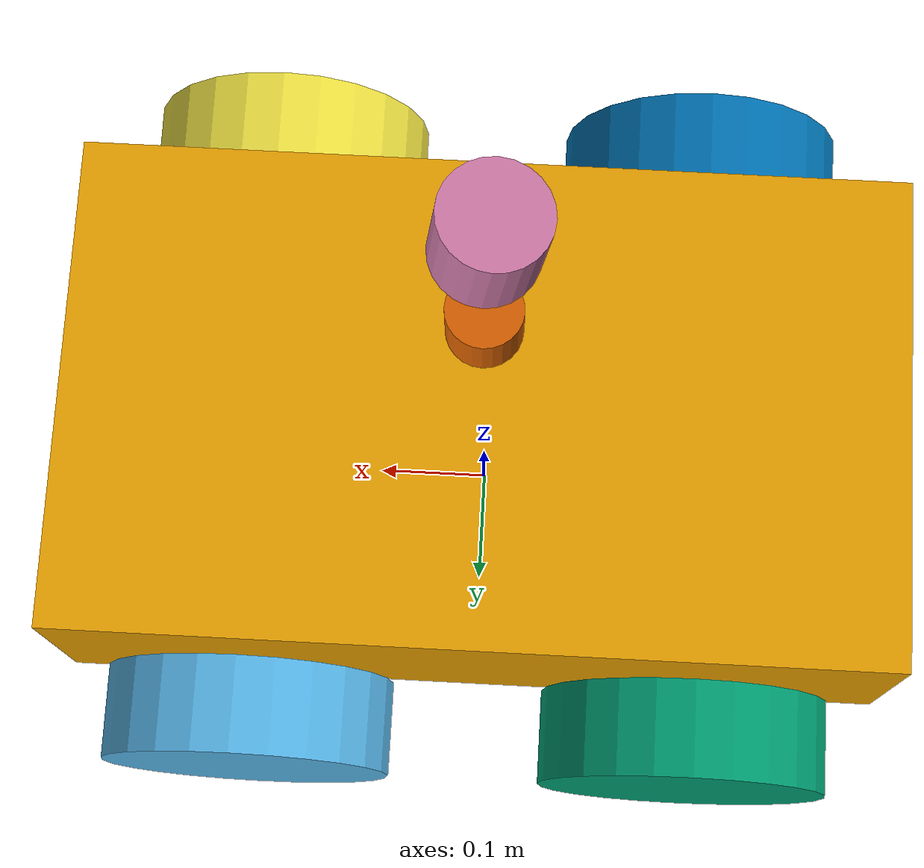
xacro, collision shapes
<?xml version="1.0"?>
	<!-- Revolute-Revolute Manipulator -->
	<robot name="autolabor_pro1" xmlns:xacro="http://www.ros.org/wiki/xacro">

	<xacro:property name="PI" value="3.1415926535897931"/>
	<xacro:property name="shaft_spacing_f" value="0.19649" />
	<xacro:property name="shaft_spacing_b" value="0.18988" />
	<xacro:property name="wheel_spacing_2" value="0.2643" />
	<xacro:property name="height" value="0.11913" />
  <xacro:include filename="$(find ouster_description)/urdf/OS1-64.urdf.xacro"/>

	<!-- Base Link -->
	<link name="base_link">
		<collision>
			<origin xyz="0 0 0.18288" rpy="0 0 0"/>
			<geometry>
				<box size="0.7248 0.4302 0.195"/>
			</geometry>
		</collision>

		<visual>
			<origin xyz="0 0 0" rpy="0 0 0"/>
			<geometry>
				<mesh filename="package://autolabor_description/meshes/pro1_body_color.dae"/>
			</geometry>
		</visual>

	</link>

	<link name="left_front_wheel">
		<collision>
			<origin xyz="0 0 0" rpy="1.5708 0 0"/>
			<geometry>
				<cylinder length="0.0822" radius="0.127"/>
			</geometry>
		</collision>

		<visual>
			<origin xyz="0 0 0" rpy="0 0 0"/>
			<geometry>
				<mesh filename="package://autolabor_description/meshes/pro1_wheel_color.dae"/>
			</geometry>
		</visual>

		<inertial>
			<origin xyz="0 0 0" rpy="0 0 0"/>
			<mass value="1.5"/>
			<inertia ixx="0.013" ixy="0.0" ixz="0.0" iyy="0.0074" iyz="0.0" izz="0.0074"/>
		</inertial>
	</link>

	<link name="left_back_wheel">
		<collision>
			<origin xyz="0 0 0" rpy="1.5708 0 0"/>
			<geometry>
				<cylinder length="0.0822" radius="0.127"/>
			</geometry>
		</collision>

		<visual>
			<origin xyz="0 0 0" rpy="0 0 0"/>
			<geometry>
				<mesh filename="package://autolabor_description/meshes/pro1_wheel_color.dae"/>
			</geometry>
		</visual>

		<inertial>
			<origin xyz="0 0 0" rpy="0 0 0"/>
			<mass value="1.5"/>
			<inertia ixx="0.013" ixy="0.0" ixz="0.0" iyy="0.0074" iyz="0.0" izz="0.0074"/>
		</inertial>
	</link>

	<link name="right_front_wheel">
		<collision>
			<origin xyz="0 0 0" rpy="1.5708 0 0"/>
			<geometry>
				<cylinder length="0.0822" radius="0.127"/>
			</geometry>
		</collision>

		<visual>
			<origin xyz="0 0 0" rpy="0 0 ${PI}"/>
			<geometry>
				<mesh filename="package://autolabor_description/meshes/pro1_wheel_color.dae"/>
			</geometry>
		</visual>

		<inertial>
			<origin xyz="0 0 0" rpy="0 0 ${PI}"/>
			<mass value="1.5"/>
			<inertia ixx="0.013" ixy="0.0" ixz="0.0" iyy="0.0074" iyz="0.0" izz="0.0074"/>
		</inertial>
	</link>

	<link name="right_back_wheel">
		<collision>
			<origin xyz="0 0 0" rpy="1.5708 0 0"/>
			<geometry>
				<cylinder length="0.0822" radius="0.127"/>
			</geometry>
		</collision>

		<visual>
			<origin xyz="0 0 0" rpy="0 0 ${PI}"/>
			<geometry>
				<mesh filename="package://autolabor_description/meshes/pro1_wheel_color.dae"/>
			</geometry>
		</visual>

		<inertial>
			<origin xyz="0 0 0" rpy="0 0 ${PI}"/>
			<mass value="1.5"/>
			<inertia ixx="0.013" ixy="0.0" ixz="0.0" iyy="0.0074" iyz="0.0" izz="0.0074"/>
		</inertial>
	</link>

	<link name="laser">
		<collision>
			<origin xyz="0 0 0" rpy="0 0 0"/>
			<geometry>
				<cylinder length="0.05" radius="0.03"/>
			</geometry>
		</collision>

		<visual>
			<origin xyz="0 0 0" rpy="0 0 0"/>
			<geometry>
				<cylinder length="0.05" radius="0.03"/>
			</geometry>
		</visual>

		<inertial>
			<origin xyz="0 0 0" rpy="0 0 0"/>
			<mass value="0.1"/>
			<inertia ixx="0.0074" ixy="0.0" ixz="0.0" iyy="0.0074" iyz="0.0" izz="0.013"/>
		</inertial>
	</link>

	<joint name="joint_left_front" type="continuous">
		<parent link="base_link"/>
		<child link="left_front_wheel"/>
		<origin xyz="${shaft_spacing_f} ${wheel_spacing_2} ${height}" rpy="0 0 0"/>
		<axis xyz="0 1 0"/>
		<dynamics damping="0.7"/>
	</joint>

	<joint name="joint_left_back" type="continuous">
		<parent link="base_link"/>
		<child link="left_back_wheel"/>
		<origin xyz="-${shaft_spacing_b} ${wheel_spacing_2} ${height}" rpy="0 0 0"/>
		<axis xyz="0 1 0"/>
		<dynamics damping="0.7"/>
	</joint>

	<joint name="joint_right_front" type="continuous">
		<parent link="base_link"/>
		<child link="right_front_wheel"/>
		<origin xyz="${shaft_spacing_f} -${wheel_spacing_2} ${height}" rpy="0 0 0"/>
		<axis xyz="0 1 0"/>
		<dynamics damping="0.7"/>
	</joint>

	<joint name="joint_right_back" type="continuous">
		<parent link="base_link"/>
		<child link="right_back_wheel"/>
		<origin xyz="-${shaft_spacing_b} -${wheel_spacing_2} ${height}" rpy="0 0 0"/>
		<axis xyz="0 1 0"/>
		<dynamics damping="0.7"/>
	</joint>

	<joint name="joint_lidar" type="fixed">
		<parent link="base_link"/>
		<child link="laser"/>
		<origin xyz="0.0 0.0 0.5" rpy="0.0 0.0 1.57"/>
	</joint>

  <xacro:OS1-64 parent="base_link" name="os_sensor"  hz="10" samples="360" min_range="0" max_range="15" imu_link="os_imu" lidar_link="os_lidar">
    <origin xyz="0 0 0.65" rpy="0.1 0 -1.57" />
  </xacro:OS1-64 >

	<!-- Gazebo plugins for simulation -->
	<gazebo>
		<!-- Differential drive controller for two-wheel drive -->
		<plugin name="diff_drive" filename="libgazebo_ros_diff_drive.so">
			<alwaysOn>true</alwaysOn>
			<updateRate>30</updateRate>
			<leftJoint>joint_left_front</leftJoint>
			<rightJoint>joint_right_front</rightJoint>
			<wheelSeparation>${wheel_spacing_2 * 2}</wheelSeparation>
			<wheelDiameter>0.254</wheelDiameter>
			<torque>10.0</torque>
			<maxLinearSpeed>1.0</maxLinearSpeed>
			<maxAngularSpeed>2.0</maxAngularSpeed>
			<publishWheelTF>true</publishWheelTF>
			<publishWheelJointState>true</publishWheelJointState>
			<robotNamespace>/r1</robotNamespace>
			<odometryTopic>odom</odometryTopic>
			<odometryFrame>odom</odometryFrame>
			<robotBaseFrame>base_link</robotBaseFrame>
			<commandTopic>cmd_vel</commandTopic>
			<publishTf>1</publishTf>
			<odometrySource>world</odometrySource>
		</plugin>
	</gazebo>

</robot>

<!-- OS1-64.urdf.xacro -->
<robot xmlns:xacro="http://www.ros.org/wiki/xacro" name="OS1-64">
  <xacro:property name="M_PI" value="3.1415926535897931" />
  <xacro:macro name="OS1-64" params="*origin parent:=CHASSIS name:=os1_sensor topic_points:=/os1_cloud_node/points topic_imu:=/os1_cloud_node/imu hz:=10 lasers:=64 samples:=512 min_range:=0.9 max_range:=75.0 noise:=0.008 min_angle:=-${M_PI} max_angle:=${M_PI} lidar_link:=os1_lidar imu_link:=os1_imu vfov_min:=-.26 vfov_max:=.26">

    <joint name="${name}_mount_joint" type="fixed">
      <xacro:insert_block name="origin" />
      <parent link="${parent}"/>
      <child link="${name}"/>
    </joint>

    <link name="${name}">
      <inertial>
         <mass value="0.01"/>
         <origin xyz="0 0 0.0365" rpy="0 0 0" />
         <inertia ixx="0.000241148" ixy="0" ixz="0"
          iyy="0.000241148" iyz="0" izz="0.000264"/>
      </inertial>
      <collision name="base_collision">
         <origin xyz="0 0 0.0365" rpy="0 0 0" />
         <geometry>
 	        <cylinder radius="0.04" length="0.073"/>
         </geometry>
      </collision>
      <visual name="base_visual">
         <origin xyz="0 0 0.0" rpy="0 0 1.5707" />
         <geometry>
	         <mesh filename="package://ouster_description/meshes/os1_64.dae" />
         </geometry>
      </visual>
    </link>

    <link name="${imu_link}" />

    <link name="${lidar_link}" />

    <joint name="${name}_imu_link_joint" type="fixed">
      <parent link="${name}" />
      <child link="${imu_link}" />
      <origin xyz="0.006253 -0.011775 0.007645" rpy="0 0 0" />
    </joint>
    <gazebo reference="${imu_link}">
    </gazebo>

    <joint name="${name}_lidar_link_joint" type="fixed">
      <parent link="${name}" />
      <child link="${lidar_link}" />
      <origin xyz="0.0 0.0 0.03618" rpy="0 0 0" />
    </joint>

    <!-- Gazebo requires the ouster_gazebo_plugins package -->
    <gazebo reference="${name}">
        <sensor type="ray" name="${name}-OS1-64">
          <pose>0 0 0 0 0 0</pose>
          <visualize>false</visualize>
          <update_rate>${hz}</update_rate>
          <ray>
            <scan>
              <horizontal>
                <samples>${samples}</samples>
                <resolution>1</resolution>
                <min_angle>${min_angle}</min_angle>
                <max_angle>${max_angle}</max_angle>
              </horizontal>
              <vertical>
                <samples>${lasers}</samples>
                <resolution>1</resolution>
                <min_angle>${vfov_min}</min_angle>
                <max_angle>${vfov_max}</max_angle>
              </vertical>
            </scan>
            <range>
              <min>${min_range}</min>
              <max>${max_range}</max>
              <resolution>0.03</resolution>
            </range>
          </ray>
          <plugin name="gazebo_ros_laser_controller" filename="libgazebo_ros_ouster_laser.so">
            <topicName>${topic_points}</topicName>
            <frameName>${lidar_link}</frameName>
            <min_range>${min_range}</min_range>
            <max_range>${max_range}</max_range>
            <gaussianNoise>${noise}</gaussianNoise>
          </plugin>
        </sensor>
    </gazebo>

    <!-- IMU -->
  <gazebo>
    <plugin name="imu_controller" filename="libhector_gazebo_ros_imu.so">
      <robotNamespace>/</robotNamespace>
      <updateRate>100.0</updateRate>
      <bodyName>${imu_link}</bodyName>
      <topicName>${topic_imu}</topicName>
      <accelDrift>0.005 0.005 0.005</accelDrift>
      <accelGaussianNoise>0.005 0.005 0.005</accelGaussianNoise>
      <rateDrift>0.005 0.005 0.005 </rateDrift>
      <rateGaussianNoise>0.005 0.005 0.005 </rateGaussianNoise>
      <headingDrift>0.005</headingDrift>
      <headingGaussianNoise>0.005</headingGaussianNoise>
    </plugin>
  </gazebo>

  </xacro:macro>
</robot>
